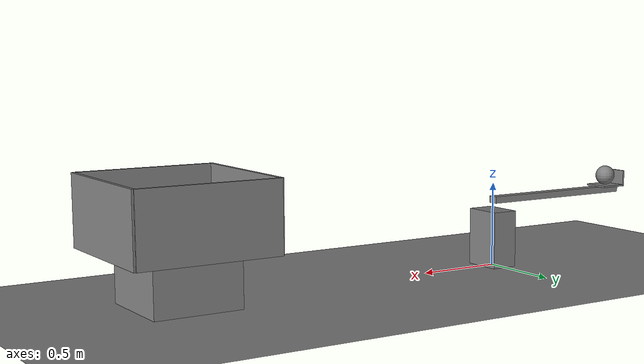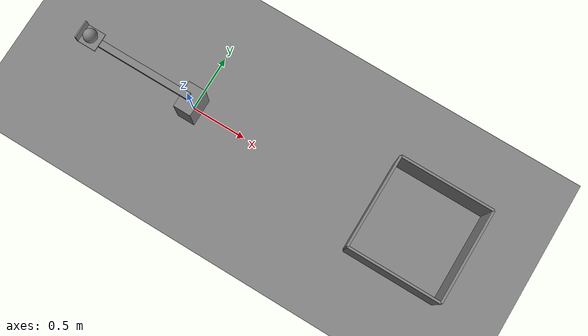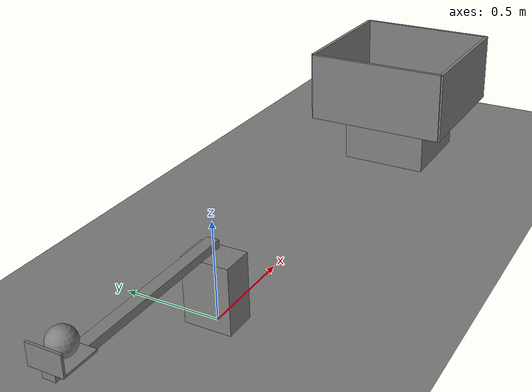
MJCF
<mujoco model="catapult_fixture">
  <option timestep="0.002"/>
  <worldbody>
    <geom name="floor" type="plane" size="8 8 0.1"/>
    <geom name="catapult_base" type="box" pos="0 0 0.170" size="0.08 0.12 0.170"/>
    <body name="catapult_arm" pos="0 0 0.4">
      <joint name="catapult_hinge" type="hinge" axis="0 1 0" range="0 55" stiffness="3.4" springref="150" damping="0.05" armature="0.01"/>
      <geom name="catapult_beam" type="box" pos="-0.500 0 0" size="0.500 0.03 0.02" mass="0.3"/>
      <geom name="catapult_cup_floor" type="box" pos="-0.920 0 0.025" size="0.08 0.08 0.005" mass="0.02"/>
      <geom name="catapult_cup_back" type="box" pos="-1.005 0 0.07" size="0.005 0.08 0.05" mass="0.01"/>
    </body>
    <body name="ball" pos="-0.920 0 0.4895">
      <freejoint/>
      <geom name="ball" type="sphere" size="0.06" mass="0.15" condim="6" friction="0.8 0.01 0.004" solref="0.01 1"/>
    </body>
    <body name="bucket" pos="2.080 0 0.4895">
      <geom name="bucket_support" type="box" pos="0 0 -0.34475" size="0.25 0.25 0.14475"/>
      <geom name="bucket_base" type="box" pos="0 0 -0.190" size="0.4 0.4 0.01"/>
      <geom name="bucket_near" type="box" pos="-0.4 0 0" size="0.01 0.4 0.2"/>
      <geom name="bucket_far" type="box" pos="0.4 0 0" size="0.01 0.4 0.2"/>
      <geom name="bucket_left" type="box" pos="0 0.4 0" size="0.4 0.01 0.2"/>
      <geom name="bucket_right" type="box" pos="0 -0.4 0" size="0.4 0.01 0.2"/>
    </body>
  </worldbody>
</mujoco>
